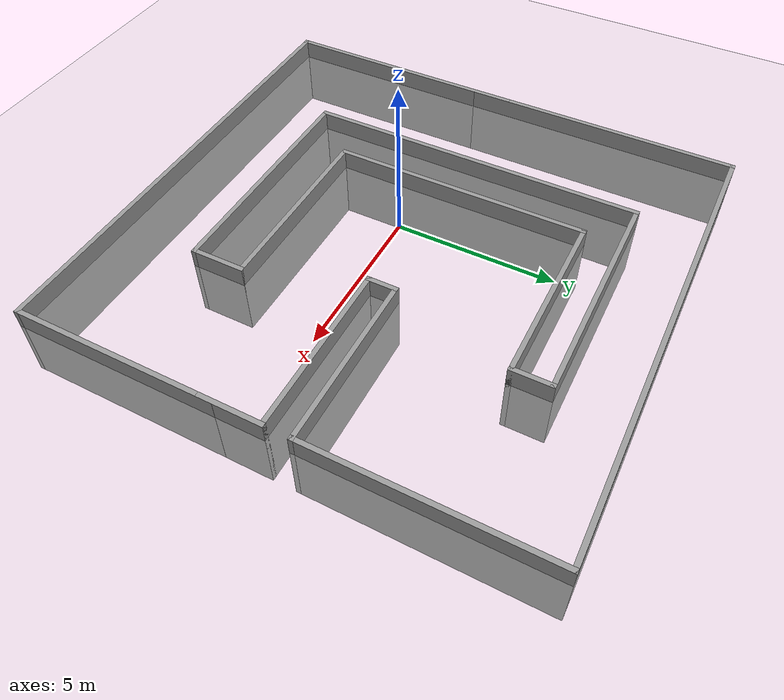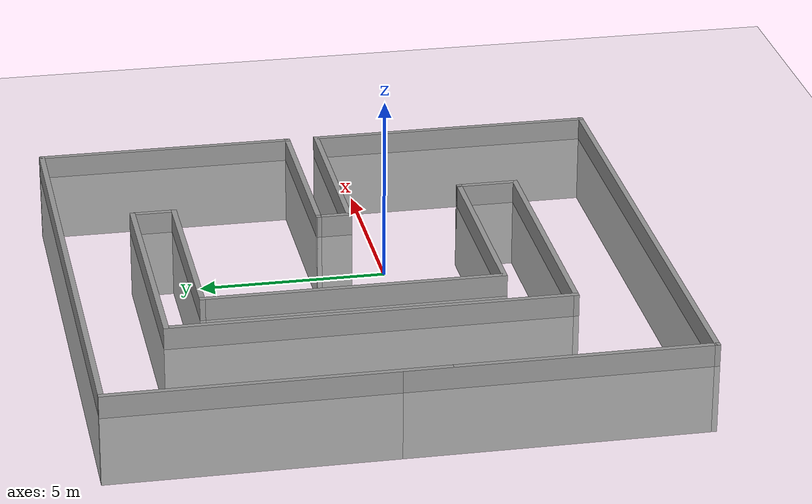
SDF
<sdf version="1.7">
 <world name="default">
  <light name="sun" type="directional">
   <pose>0 0 10 0 -0 0</pose>
   <diffuse>0.8 0.8 0.8 1</diffuse>
   <specular>0.2 0.2 0.2 1</specular>
   <attenuation>
    <range>1000</range>
    <constant>0.9</constant>
    <linear>0.01</linear>
    <quadratic>0.001</quadratic>
   </attenuation>
   <direction>-0.5 0.1 -0.9</direction>
   <spot><inner_angle>0</inner_angle><outer_angle>0</outer_angle><falloff>0</falloff></spot>
  </light>
  <model name="ground_plane">
   <static>1</static>
   <link name="link">
    <collision name="collision">
     <geometry><plane><normal>0 0 1</normal><size>100 100</size></plane></geometry>
     <surface>
      <contact><collide_bitmask>65535</collide_bitmask></contact>
      <friction><ode><mu>100</mu><mu2>50</mu2></ode></friction>
     </surface>
    </collision>
    <visual name="visual">
     <cast_shadows>0</cast_shadows>
     <geometry><plane><normal>0 0 1</normal><size>100 100</size></plane></geometry>
     <material>
      <script><uri>file://media/materials/scripts/gazebo.material</uri><name>Gazebo/Grey</name></script>
     </material>
    </visual>
   </link>
  </model>
  <gravity>0 0 -9.8</gravity>
  <magnetic_field>6e-06 2.3e-05 -4.2e-05</magnetic_field>
  <atmosphere type="adiabatic"/>
  <physics type="ode">
   <max_step_size>0.001</max_step_size>
   <real_time_factor>1</real_time_factor>
   <real_time_update_rate>1000</real_time_update_rate>
  </physics>
  <scene><ambient>0.4 0.4 0.4 1</ambient><background>0.7 0.7 0.7 1</background><shadows>1</shadows></scene>
  <spherical_coordinates>
   <surface_model>EARTH_WGS84</surface_model>
   <latitude_deg>0</latitude_deg>
   <longitude_deg>0</longitude_deg>
   <elevation>0</elevation>
   <heading_deg>0</heading_deg>
  </spherical_coordinates>
  <model name="iccas_track">
   <pose>0.695 0.52 -1.91529 0 -0 0</pose>
   <link name="Wall_10">
    <collision name="Wall_10_Collision">
     <geometry><box><size>8.25 0.15 2.5</size></box></geometry>
     <pose>0 0 1.25 0 -0 0</pose>
    </collision>
    <visual name="Wall_10_Visual">
     <pose>0 0 1.25 0 -0 0</pose>
     <geometry><box><size>8.25 0.15 2.5</size></box></geometry>
     <material>
      <script><uri>file://media/materials/scripts/gazebo.material</uri><name>Gazebo/Grey</name></script>
      <ambient>1 1 1 1</ambient>
     </material>
     <meta><layer>0</layer></meta>
    </visual>
    <pose>-7.425 -3.85 0 0 -0 1.5708</pose>
   </link>
   <link name="Wall_14">
    <collision name="Wall_14_Collision">
     <geometry><box><size>5.75 0.15 2.5</size></box></geometry>
     <pose>0 0 1.25 0 -0 0</pose>
    </collision>
    <visual name="Wall_14_Visual">
     <pose>0 0 1.25 0 -0 0</pose>
     <geometry><box><size>5.75 0.15 2.5</size></box></geometry>
     <material>
      <script><uri>file://media/materials/scripts/gazebo.material</uri><name>Gazebo/Grey</name></script>
      <ambient>1 1 1 1</ambient>
     </material>
     <meta><layer>0</layer></meta>
    </visual>
    <pose>0.337228 4.67041 0 0 -0 3.14159</pose>
   </link>
   <link name="Wall_2">
    <collision name="Wall_2_Collision">
     <geometry><box><size>9 0.15 2.5</size></box></geometry>
     <pose>0 0 1.25 0 -0 0</pose>
    </collision>
    <visual name="Wall_2_Visual">
     <pose>0 0 1.25 0 -0 0</pose>
     <geometry><box><size>9 0.15 2.5</size></box></geometry>
     <material>
      <script><uri>file://media/materials/scripts/gazebo.material</uri><name>Gazebo/Grey</name></script>
      <ambient>1 1 1 1</ambient>
     </material>
     <meta><layer>0</layer></meta>
    </visual>
    <pose>-7.425 3.475 0 0 -0 1.5708</pose>
   </link>
   <link name="Wall_22">
    <collision name="Wall_22_Collision">
     <geometry><box><size>7.25 0.15 2.5</size></box></geometry>
     <pose>0 0 1.25 0 -0 0</pose>
    </collision>
    <visual name="Wall_22_Visual">
     <pose>0 0 1.25 0 -0 0</pose>
     <geometry><box><size>7.25 0.15 2.5</size></box></geometry>
     <material>
      <script><uri>file://media/materials/scripts/gazebo.material</uri><name>Gazebo/Grey</name></script>
      <ambient>1 1 1 1</ambient>
     </material>
     <meta><layer>0</layer></meta>
    </visual>
    <pose>7.425 4.35 0 0 -0 -1.5708</pose>
   </link>
   <link name="Wall_23">
    <collision name="Wall_23_Collision">
     <geometry><box><size>5.5 0.15 2.5</size></box></geometry>
     <pose>0 0 1.25 0 -0 0</pose>
    </collision>
    <visual name="Wall_23_Visual">
     <pose>0 0 1.25 0 -0 0</pose>
     <geometry><box><size>5.5 0.15 2.5</size></box></geometry>
     <material>
      <script><uri>file://media/materials/scripts/gazebo.material</uri><name>Gazebo/Grey</name></script>
      <ambient>1 1 1 1</ambient>
     </material>
     <meta><layer>0</layer></meta>
    </visual>
    <pose>4.75 0.8 0 0 -0 3.14159</pose>
   </link>
   <link name="Wall_24">
    <collision name="Wall_24_Collision">
     <geometry><box><size>1 0.15 2.5</size></box></geometry>
     <pose>0 0 1.25 0 -0 0</pose>
    </collision>
    <visual name="Wall_24_Visual">
     <pose>0 0 1.25 0 -0 0</pose>
     <geometry><box><size>1 0.15 2.5</size></box></geometry>
     <material>
      <script><uri>file://media/materials/scripts/gazebo.material</uri><name>Gazebo/Grey</name></script>
      <ambient>1 1 1 1</ambient>
     </material>
     <meta><layer>0</layer></meta>
    </visual>
    <pose>2.075 0.375 0 0 -0 -1.5708</pose>
   </link>
   <link name="Wall_25">
    <collision name="Wall_25_Collision">
     <geometry><box><size>5.5 0.15 2.5</size></box></geometry>
     <pose>0 0 1.25 0 -0 0</pose>
    </collision>
    <visual name="Wall_25_Visual">
     <pose>0 0 1.25 0 -0 0</pose>
     <geometry><box><size>5.5 0.15 2.5</size></box></geometry>
     <material>
      <script><uri>file://media/materials/scripts/gazebo.material</uri><name>Gazebo/Grey</name></script>
      <ambient>1 1 1 1</ambient>
     </material>
     <meta><layer>0</layer></meta>
    </visual>
    <pose>4.75 -0.05 0 0 -0 0</pose>
   </link>
   <link name="Wall_26">
    <collision name="Wall_26_Collision">
     <geometry><box><size>2 0.15 2.5</size></box></geometry>
     <pose>0 0 1.25 0 -0 0</pose>
    </collision>
    <visual name="Wall_26_Visual">
     <pose>0 0 1.25 0 -0 0</pose>
     <geometry><box><size>2 0.15 2.5</size></box></geometry>
     <material>
      <script><uri>file://media/materials/scripts/gazebo.material</uri><name>Gazebo/Grey</name></script>
      <ambient>1 1 1 1</ambient>
     </material>
     <meta><layer>0</layer></meta>
    </visual>
    <pose>7.425 -0.975 0 0 -0 -1.5708</pose>
   </link>
   <link name="Wall_28">
    <collision name="Wall_28_Collision">
     <geometry><box><size>8.25 0.15 2.5</size></box></geometry>
     <pose>0 0 1.25 0 -0 0</pose>
    </collision>
    <visual name="Wall_28_Visual">
     <pose>0 0 1.25 0 -0 0</pose>
     <geometry><box><size>8.25 0.15 2.5</size></box></geometry>
     <material>
      <script><uri>file://media/materials/scripts/gazebo.material</uri><name>Gazebo/Grey</name></script>
      <ambient>1 1 1 1</ambient>
     </material>
     <meta><layer>0</layer></meta>
    </visual>
    <pose>-2.46277 0.620406 0 0 -0 -1.5708</pose>
   </link>
   <link name="Wall_29">
    <collision name="Wall_29_Collision">
     <geometry><box><size>6 0.15 2.5</size></box></geometry>
     <pose>0 0 1.25 0 -0 0</pose>
    </collision>
    <visual name="Wall_29_Visual">
     <pose>0 0 1.25 0 -0 0</pose>
     <geometry><box><size>6 0.15 2.5</size></box></geometry>
     <material>
      <script><uri>file://media/materials/scripts/gazebo.material</uri><name>Gazebo/Grey</name></script>
      <ambient>1 1 1 1</ambient>
     </material>
     <meta><layer>0</layer></meta>
    </visual>
    <pose>0.462228 -3.42959 0 0 -0 0</pose>
   </link>
   <link name="Wall_3">
    <collision name="Wall_3_Collision">
     <geometry><box><size>15 0.15 2.5</size></box></geometry>
     <pose>0 0 1.25 0 -0 0</pose>
    </collision>
    <visual name="Wall_3_Visual">
     <pose>0 0 1.25 0 -0 0</pose>
     <geometry><box><size>15 0.15 2.5</size></box></geometry>
     <material>
      <script><uri>file://media/materials/scripts/gazebo.material</uri><name>Gazebo/Grey</name></script>
      <ambient>1 1 1 1</ambient>
     </material>
     <meta><layer>0</layer></meta>
    </visual>
    <pose>0 7.9 0 0 -0 0</pose>
   </link>
   <link name="Wall_38">
    <collision name="Wall_38_Collision">
     <geometry><box><size>1.75 0.15 2.5</size></box></geometry>
     <pose>0 0 1.25 0 -0 0</pose>
    </collision>
    <visual name="Wall_38_Visual">
     <pose>0 0 1.25 0 -0 0</pose>
     <geometry><box><size>1.75 0.15 2.5</size></box></geometry>
     <material>
      <script><uri>file://media/materials/scripts/gazebo.material</uri><name>Gazebo/Grey</name></script>
      <ambient>1 1 1 1</ambient>
     </material>
     <meta><layer>0</layer></meta>
    </visual>
    <pose>3.38723 -4.22959 0 0 -0 -1.5708</pose>
   </link>
   <link name="Wall_39">
    <collision name="Wall_39_Collision">
     <geometry><box><size>7.5 0.15 2.5</size></box></geometry>
     <pose>0 0 1.25 0 -0 0</pose>
    </collision>
    <visual name="Wall_39_Visual">
     <pose>0 0 1.25 0 -0 0</pose>
     <geometry><box><size>7.5 0.15 2.5</size></box></geometry>
     <material>
      <script><uri>file://media/materials/scripts/gazebo.material</uri><name>Gazebo/Grey</name></script>
      <ambient>1 1 1 1</ambient>
     </material>
     <meta><layer>0</layer></meta>
    </visual>
    <pose>-0.287772 -5.02959 0 0 -0 3.14159</pose>
   </link>
   <link name="Wall_40">
    <collision name="Wall_40_Collision">
     <geometry><box><size>11 0.15 2.5</size></box></geometry>
     <pose>0 0 1.25 0 -0 0</pose>
    </collision>
    <visual name="Wall_40_Visual">
     <pose>0 0 1.25 0 -0 0</pose>
     <geometry><box><size>11 0.15 2.5</size></box></geometry>
     <material>
      <script><uri>file://media/materials/scripts/gazebo.material</uri><name>Gazebo/Grey</name></script>
      <ambient>1 1 1 1</ambient>
     </material>
     <meta><layer>0</layer></meta>
    </visual>
    <pose>-3.96277 0.395406 0 0 -0 1.5708</pose>
   </link>
   <link name="Wall_41">
    <collision name="Wall_41_Collision">
     <geometry><box><size>7.25 0.15 2.5</size></box></geometry>
     <pose>0 0 1.25 0 -0 0</pose>
    </collision>
    <visual name="Wall_41_Visual">
     <pose>0 0 1.25 0 -0 0</pose>
     <geometry><box><size>7.25 0.15 2.5</size></box></geometry>
     <material>
      <script><uri>file://media/materials/scripts/gazebo.material</uri><name>Gazebo/Grey</name></script>
      <ambient>1 1 1 1</ambient>
     </material>
     <meta><layer>0</layer></meta>
    </visual>
    <pose>-0.412772 5.82041 0 0 -0 0</pose>
   </link>
   <link name="Wall_44">
    <collision name="Wall_44_Collision">
     <geometry><box><size>1.3 0.15 2.5</size></box></geometry>
     <pose>0 0 1.25 0 -0 0</pose>
    </collision>
    <visual name="Wall_44_Visual">
     <pose>0 0 1.25 0 -0 0</pose>
     <geometry><box><size>1.3 0.15 2.5</size></box></geometry>
     <material>
      <script><uri>file://media/materials/scripts/gazebo.material</uri><name>Gazebo/Grey</name></script>
      <ambient>1 1 1 1</ambient>
     </material>
     <meta><layer>0</layer></meta>
    </visual>
    <pose>3.13723 5.2454 0 0 -0 -1.5708</pose>
   </link>
   <link name="Wall_8">
    <collision name="Wall_8_Collision">
     <geometry><box><size>6.5 0.15 2.5</size></box></geometry>
     <pose>0 0 1.25 0 -0 0</pose>
    </collision>
    <visual name="Wall_8_Visual">
     <pose>0 0 1.25 0 -0 0</pose>
     <geometry><box><size>6.5 0.15 2.5</size></box></geometry>
     <material>
      <script><uri>file://media/materials/scripts/gazebo.material</uri><name>Gazebo/Grey</name></script>
      <ambient>1 1 1 1</ambient>
     </material>
     <meta><layer>0</layer></meta>
    </visual>
    <pose>7.425 -4.725 0 0 -0 -1.5708</pose>
   </link>
   <link name="Wall_9">
    <collision name="Wall_9_Collision">
     <geometry><box><size>15 0.15 2.5</size></box></geometry>
     <pose>0 0 1.25 0 -0 0</pose>
    </collision>
    <visual name="Wall_9_Visual">
     <pose>0 0 1.25 0 -0 0</pose>
     <geometry><box><size>15 0.15 2.5</size></box></geometry>
     <material>
      <script><uri>file://media/materials/scripts/gazebo.material</uri><name>Gazebo/Grey</name></script>
      <ambient>1 1 1 1</ambient>
     </material>
     <meta><layer>0</layer></meta>
    </visual>
    <pose>0 -7.9 0 0 -0 3.14159</pose>
   </link>
   <static>1</static>
  </model>
 </world>
</sdf>
